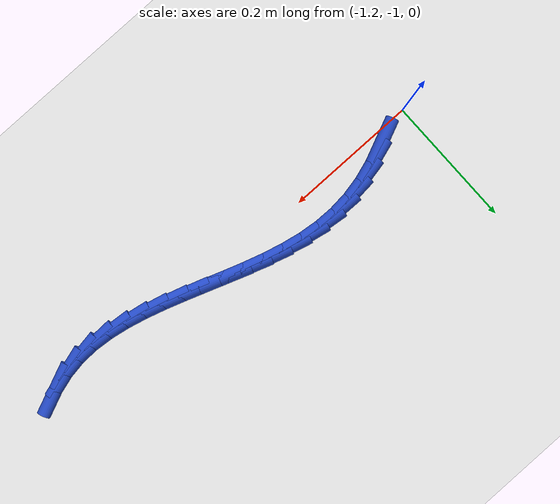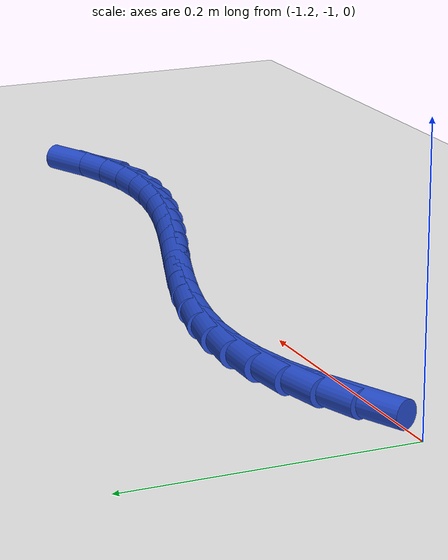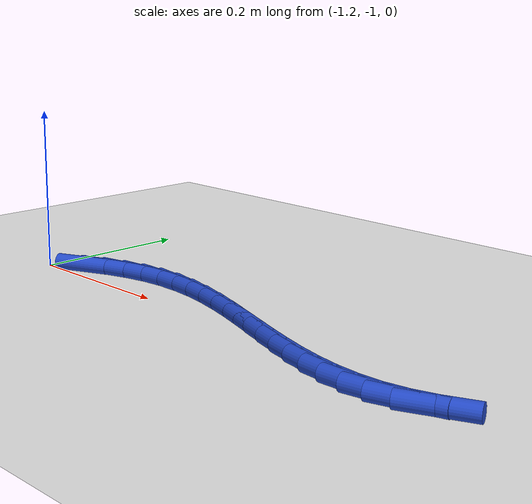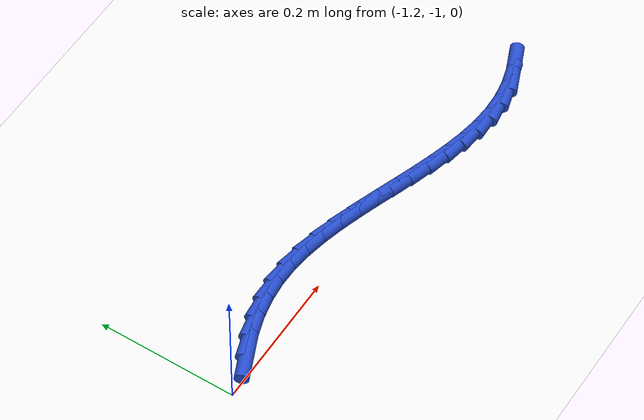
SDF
<sdf version="1.6">
 <world name="default">
  <model name="ground_plane">
   <static>1</static>
   <link name="link">
    <collision name="collision">
     <geometry><plane><normal>0 0 1</normal><size>100 100</size></plane></geometry>
     <surface><friction><ode><mu>100</mu><mu2>50</mu2></ode></friction></surface>
    </collision>
    <visual name="visual">
     <cast_shadows>0</cast_shadows>
     <geometry><plane><normal>0 0 1</normal><size>100 100</size></plane></geometry>
     <material>
      <script><uri>file://media/materials/scripts/gazebo.material</uri><name>Gazebo/WhiteGlow</name></script>
     </material>
    </visual>
   </link>
  </model>
  <model name="line">
   <link name="link_190">
    <pose>-1.1425927621128669 -0.9837709232216691 0.01 0 1.57 0.4141629243991086</pose>
    <collision name="collision">
     <geometry><cylinder><radius>0.01</radius><length>0.08</length></cylinder></geometry>
    </collision>
    <visual name="visual">
     <material>
      <script><name>Gazebo/Blue</name><uri>file://media/materials/scripts/gazebo.material</uri></script>
     </material>
     <geometry><cylinder><radius>0.01</radius><length>0.08</length></cylinder></geometry>
    </visual>
   </link>
   <link name="link_191">
    <pose>-1.1142477136859095 -0.9713107368996318 0.01 0 1.57 0.3114337309456131</pose>
    <collision name="collision">
     <geometry><cylinder><radius>0.01</radius><length>0.08</length></cylinder></geometry>
    </collision>
    <visual name="visual">
     <material>
      <script><name>Gazebo/Blue</name><uri>file://media/materials/scripts/gazebo.material</uri></script>
     </material>
     <geometry><cylinder><radius>0.01</radius><length>0.08</length></cylinder></geometry>
    </visual>
   </link>
   <link name="link_192">
    <pose>-1.0857414280598972 -0.9621343047713342 0.01 0 1.57 0.20391737665770598</pose>
    <collision name="collision">
     <geometry><cylinder><radius>0.01</radius><length>0.08</length></cylinder></geometry>
    </collision>
    <visual name="visual">
     <material>
      <script><name>Gazebo/Blue</name><uri>file://media/materials/scripts/gazebo.material</uri></script>
     </material>
     <geometry><cylinder><radius>0.01</radius><length>0.08</length></cylinder></geometry>
    </visual>
   </link>
   <link name="link_193">
    <pose>-1.057037568016979 -0.9561985863482734 0.01 0 1.57 0.09433753016368206</pose>
    <collision name="collision">
     <geometry><cylinder><radius>0.01</radius><length>0.08</length></cylinder></geometry>
    </collision>
    <visual name="visual">
     <material>
      <script><name>Gazebo/Blue</name><uri>file://media/materials/scripts/gazebo.material</uri></script>
     </material>
     <geometry><cylinder><radius>0.01</radius><length>0.08</length></cylinder></geometry>
    </visual>
   </link>
   <link name="link_194">
    <pose>-1.028099796339306 -0.9534605411419462 0.01 0 1.57 -0.014209357206767474</pose>
    <collision name="collision">
     <geometry><cylinder><radius>0.01</radius><length>0.08</length></cylinder></geometry>
    </collision>
    <visual name="visual">
     <material>
      <script><name>Gazebo/Blue</name><uri>file://media/materials/scripts/gazebo.material</uri></script>
     </material>
     <geometry><cylinder><radius>0.01</radius><length>0.08</length></cylinder></geometry>
    </visual>
   </link>
   <link name="link_195">
    <pose>-0.9988921101893987 -0.9538755915217069 0.01 0 1.57 -0.11380728790591052</pose>
    <collision name="collision">
     <geometry><cylinder><radius>0.01</radius><length>0.08</length></cylinder></geometry>
    </collision>
    <visual name="visual">
     <material>
      <script><name>Gazebo/Blue</name><uri>file://media/materials/scripts/gazebo.material</uri></script>
     </material>
     <geometry><cylinder><radius>0.01</radius><length>0.08</length></cylinder></geometry>
    </visual>
   </link>
   <link name="link_196">
    <pose>-0.9694119974126586 -0.9572452036308121 0.01 0 1.57 -0.19427815202601734</pose>
    <collision name="collision">
     <geometry><cylinder><radius>0.01</radius><length>0.08</length></cylinder></geometry>
    </collision>
    <visual name="visual">
     <material>
      <script><name>Gazebo/Blue</name><uri>file://media/materials/scripts/gazebo.material</uri></script>
     </material>
     <geometry><cylinder><radius>0.01</radius><length>0.08</length></cylinder></geometry>
    </visual>
   </link>
   <link name="link_197">
    <pose>-0.9397185424169278 -0.9630876850299296 0.01 0 1.57 -0.2557658760805795</pose>
    <collision name="collision">
     <geometry><cylinder><radius>0.01</radius><length>0.08</length></cylinder></geometry>
    </collision>
    <visual name="visual">
     <material>
      <script><name>Gazebo/Blue</name><uri>file://media/materials/scripts/gazebo.material</uri></script>
     </material>
     <geometry><cylinder><radius>0.01</radius><length>0.08</length></cylinder></geometry>
    </visual>
   </link>
   <link name="link_198">
    <pose>-0.9098774481539915 -0.9708909179207854 0.01 0 1.57 -0.29986544224546846</pose>
    <collision name="collision">
     <geometry><cylinder><radius>0.01</radius><length>0.08</length></cylinder></geometry>
    </collision>
    <visual name="visual">
     <material>
      <script><name>Gazebo/Blue</name><uri>file://media/materials/scripts/gazebo.material</uri></script>
     </material>
     <geometry><cylinder><radius>0.01</radius><length>0.08</length></cylinder></geometry>
    </visual>
   </link>
   <link name="link_199">
    <pose>-0.8799544175756356 -0.9801427845051061 0.01 0 1.57 -0.3280089212376013</pose>
    <collision name="collision">
     <geometry><cylinder><radius>0.01</radius><length>0.08</length></cylinder></geometry>
    </collision>
    <visual name="visual">
     <material>
      <script><name>Gazebo/Blue</name><uri>file://media/materials/scripts/gazebo.material</uri></script>
     </material>
     <geometry><cylinder><radius>0.01</radius><length>0.08</length></cylinder></geometry>
    </visual>
   </link>
   <link name="link_200">
    <pose>-0.8500151536336455 -0.9903311669846177 0.01 0 1.57 -0.34117875713556706</pose>
    <collision name="collision">
     <geometry><cylinder><radius>0.01</radius><length>0.08</length></cylinder></geometry>
    </collision>
    <visual name="visual">
     <material>
      <script><name>Gazebo/Blue</name><uri>file://media/materials/scripts/gazebo.material</uri></script>
     </material>
     <geometry><cylinder><radius>0.01</radius><length>0.08</length></cylinder></geometry>
    </visual>
   </link>
   <link name="link_201">
    <pose>-0.8201253592798072 -1.0009439475610467 0.01 0 1.57 -0.3397814511201369</pose>
    <collision name="collision">
     <geometry><cylinder><radius>0.01</radius><length>0.08</length></cylinder></geometry>
    </collision>
    <visual name="visual">
     <material>
      <script><name>Gazebo/Blue</name><uri>file://media/materials/scripts/gazebo.material</uri></script>
     </material>
     <geometry><cylinder><radius>0.01</radius><length>0.08</length></cylinder></geometry>
    </visual>
   </link>
   <link name="link_202">
    <pose>-0.790350737465906 -1.0114690084361193 0.01 0 1.57 -0.32359363127161683</pose>
    <collision name="collision">
     <geometry><cylinder><radius>0.01</radius><length>0.08</length></cylinder></geometry>
    </collision>
    <visual name="visual">
     <material>
      <script><name>Gazebo/Blue</name><uri>file://media/materials/scripts/gazebo.material</uri></script>
     </material>
     <geometry><cylinder><radius>0.01</radius><length>0.08</length></cylinder></geometry>
    </visual>
   </link>
   <link name="link_203">
    <pose>-0.7607569911437271 -1.0213942318115614 0.01 0 1.57 -0.29174180186816373</pose>
    <collision name="collision">
     <geometry><cylinder><radius>0.01</radius><length>0.08</length></cylinder></geometry>
    </collision>
    <visual name="visual">
     <material>
      <script><name>Gazebo/Blue</name><uri>file://media/materials/scripts/gazebo.material</uri></script>
     </material>
     <geometry><cylinder><radius>0.01</radius><length>0.08</length></cylinder></geometry>
    </visual>
   </link>
   <link name="link_204">
    <pose>-0.7314098232650567 -1.0302074998890995 0.01 0 1.57 -0.2427236649449282</pose>
    <collision name="collision">
     <geometry><cylinder><radius>0.01</radius><length>0.08</length></cylinder></geometry>
    </collision>
    <visual name="visual">
     <material>
      <script><name>Gazebo/Blue</name><uri>file://media/materials/scripts/gazebo.material</uri></script>
     </material>
     <geometry><cylinder><radius>0.01</radius><length>0.08</length></cylinder></geometry>
    </visual>
   </link>
   <link name="link_205">
    <pose>-0.7023749367816797 -1.0373966948704598 0.01 0 1.57 -0.17453357014436846</pose>
    <collision name="collision">
     <geometry><cylinder><radius>0.01</radius><length>0.08</length></cylinder></geometry>
    </collision>
    <visual name="visual">
     <material>
      <script><name>Gazebo/Blue</name><uri>file://media/materials/scripts/gazebo.material</uri></script>
     </material>
     <geometry><cylinder><radius>0.01</radius><length>0.08</length></cylinder></geometry>
    </visual>
   </link>
   <link name="link_206">
    <pose>-0.6737180346453826 -1.0424496989573686 0.01 0 1.57 -0.08502744421732565</pose>
    <collision name="collision">
     <geometry><cylinder><radius>0.01</radius><length>0.08</length></cylinder></geometry>
    </collision>
    <visual name="visual">
     <material>
      <script><name>Gazebo/Blue</name><uri>file://media/materials/scripts/gazebo.material</uri></script>
     </material>
     <geometry><cylinder><radius>0.01</radius><length>0.08</length></cylinder></geometry>
    </visual>
   </link>
   <link name="link_207">
    <pose>-0.6455048198079506 -1.0448543943515525 0.01 0 1.57 0.027272181186209644</pose>
    <collision name="collision">
     <geometry><cylinder><radius>0.01</radius><length>0.08</length></cylinder></geometry>
    </collision>
    <visual name="visual">
     <material>
      <script><name>Gazebo/Blue</name><uri>file://media/materials/scripts/gazebo.material</uri></script>
     </material>
     <geometry><cylinder><radius>0.01</radius><length>0.08</length></cylinder></geometry>
    </visual>
   </link>
   <link name="link_208">
    <pose>-0.6178009952211688 -1.0440986632547369 0.01 0 1.57 0.15880161199218562</pose>
    <collision name="collision">
     <geometry><cylinder><radius>0.01</radius><length>0.08</length></cylinder></geometry>
    </collision>
    <visual name="visual">
     <material>
      <script><name>Gazebo/Blue</name><uri>file://media/materials/scripts/gazebo.material</uri></script>
     </material>
     <geometry><cylinder><radius>0.01</radius><length>0.08</length></cylinder></geometry>
    </visual>
   </link>
   <link name="link_209">
    <pose>-0.5906666631129076 -1.0397530972575135 0.01 0 1.57 0.2872493548217922</pose>
    <collision name="collision">
     <geometry><cylinder><radius>0.01</radius><length>0.08</length></cylinder></geometry>
    </collision>
    <visual name="visual">
     <material>
      <script><name>Gazebo/Blue</name><uri>file://media/materials/scripts/gazebo.material</uri></script>
     </material>
     <geometry><cylinder><radius>0.01</radius><length>0.08</length></cylinder></geometry>
    </visual>
   </link>
   <link name="link_210">
    <pose>-0.5641264223177717 -1.0319125887378469 0.01 0 1.57 0.4023015239473088</pose>
    <collision name="collision">
     <geometry><cylinder><radius>0.01</radius><length>0.08</length></cylinder></geometry>
    </collision>
    <visual name="visual">
     <material>
      <script><name>Gazebo/Blue</name><uri>file://media/materials/scripts/gazebo.material</uri></script>
     </material>
     <geometry><cylinder><radius>0.01</radius><length>0.08</length></cylinder></geometry>
    </visual>
   </link>
  </model>
 </world>
</sdf>
